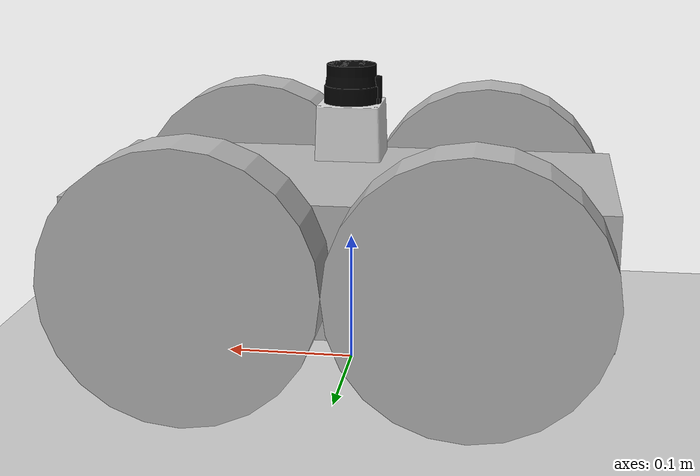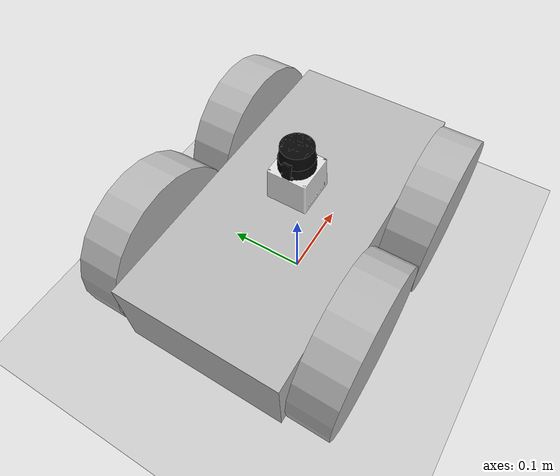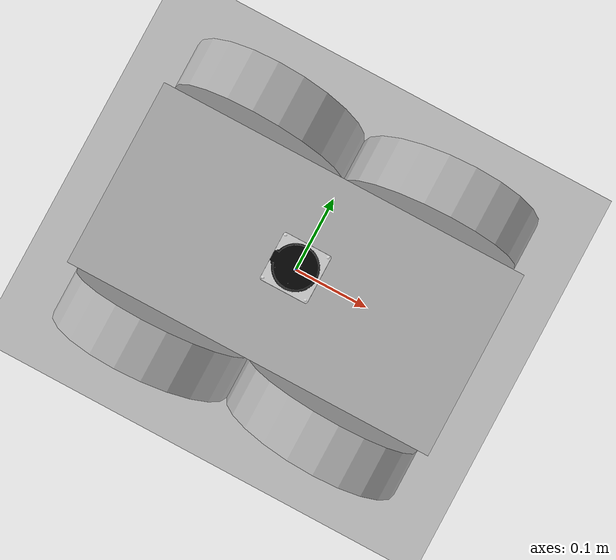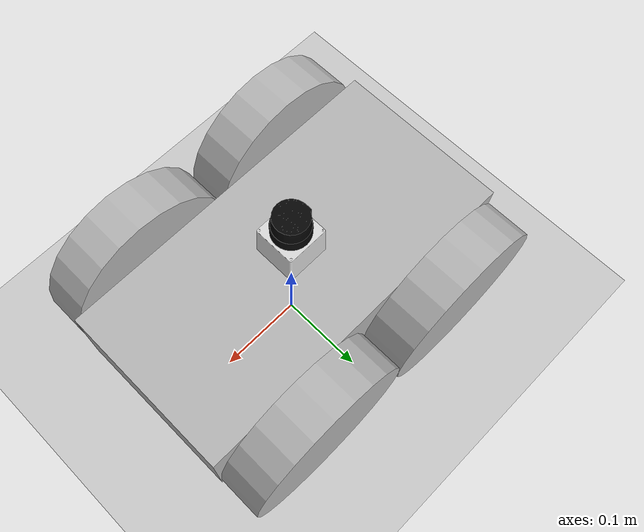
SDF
<sdf version="1.5">
 <world name="default">
  <light name="sun" type="directional">
   <pose>0 0 10 0 -0 0</pose>
   <diffuse>0.8 0.8 0.8 1</diffuse>
   <specular>0.2 0.2 0.2 1</specular>
   <attenuation>
    <range>1000</range>
    <constant>0.9</constant>
    <linear>0.01</linear>
    <quadratic>0.001</quadratic>
   </attenuation>
   <direction>-0.5 0.1 -0.9</direction>
  </light>
  <model name="ground_plane">
   <static>1</static>
   <link name="link">
    <collision name="collision">
     <geometry><plane><normal>0 0 1</normal><size>100 100</size></plane></geometry>
     <surface><friction><ode><mu>100</mu><mu2>50</mu2></ode></friction></surface>
    </collision>
    <visual name="visual">
     <cast_shadows>0</cast_shadows>
     <geometry><plane><normal>0 0 1</normal><size>100 100</size></plane></geometry>
     <material>
      <script><uri>file://media/materials/scripts/gazebo.material</uri><name>Gazebo/Grey</name></script>
     </material>
    </visual>
   </link>
  </model>
  <physics type="ode">
   <max_step_size>0.001</max_step_size>
   <real_time_factor>1</real_time_factor>
   <real_time_update_rate>1000</real_time_update_rate>
   <gravity>0 0 -9.8</gravity>
   <magnetic_field>5.5645e-06 2.28758e-05 -4.23884e-05</magnetic_field>
  </physics>
  <scene><ambient>0.4 0.4 0.4 1</ambient><background>0.7 0.7 0.7 1</background><shadows>1</shadows></scene>
  <spherical_coordinates>
   <surface_model>EARTH_WGS84</surface_model>
   <latitude_deg>0</latitude_deg>
   <longitude_deg>0</longitude_deg>
   <elevation>0</elevation>
   <heading_deg>0</heading_deg>
  </spherical_coordinates>
  <model name="jubot">
   <static>False</static>
   <link name="chassis">
    <pose>0 0 .1 0 0 0</pose>
    <collision name="collision"><geometry><box><size>.4 .2 .1</size></box></geometry></collision>
    <visual name="visual"><geometry><box><size>.4 .2 .1</size></box></geometry></visual>
   </link>
   <link name="left_front_wheel">
    <pose>0.1 0.13 0.1 0 1.5707 1.5707</pose>
    <collision name="collision">
     <geometry><cylinder><radius>.1</radius><length>.05</length></cylinder></geometry>
    </collision>
    <visual name="visual">
     <geometry><cylinder><radius>.1</radius><length>.05</length></cylinder></geometry>
    </visual>
   </link>
   <link name="right_front_wheel">
    <pose>0.1 -0.13 0.1 0 1.5707 1.5707</pose>
    <collision name="collision">
     <geometry><cylinder><radius>.1</radius><length>.05</length></cylinder></geometry>
    </collision>
    <visual name="visual">
     <geometry><cylinder><radius>.1</radius><length>.05</length></cylinder></geometry>
    </visual>
   </link>
   <link name="left_rear_wheel">
    <pose>-0.1 0.13 0.1 0 1.5707 1.5707</pose>
    <collision name="collision">
     <geometry><cylinder><radius>.1</radius><length>.05</length></cylinder></geometry>
    </collision>
    <visual name="visual">
     <geometry><cylinder><radius>.1</radius><length>.05</length></cylinder></geometry>
    </visual>
   </link>
   <link name="right_rear_wheel">
    <pose>-0.1 -0.13 0.1 0 1.5707 1.5707</pose>
    <collision name="collision">
     <geometry><cylinder><radius>.1</radius><length>.05</length></cylinder></geometry>
    </collision>
    <visual name="visual">
     <geometry><cylinder><radius>.1</radius><length>.05</length></cylinder></geometry>
    </visual>
   </link>
   <joint type="revolute" name="left_front">
    <pose>0 0 -0.03 0 0 0</pose>
    <child>left_front_wheel</child>
    <parent>chassis</parent>
    <axis><xyz>0 0 1</xyz></axis>
   </joint>
   <joint type="revolute" name="right_front">
    <pose>0 0 0.03 0 0 0</pose>
    <child>right_front_wheel</child>
    <parent>chassis</parent>
    <axis><xyz>0 0 1</xyz></axis>
   </joint>
   <joint type="revolute" name="left_rear">
    <pose>0 0 -0.03 0 0 0</pose>
    <child>left_rear_wheel</child>
    <parent>chassis</parent>
    <axis><xyz>0 0 1</xyz></axis>
   </joint>
   <joint type="revolute" name="right_rear">
    <pose>0 0 0.03 0 0 0</pose>
    <child>right_rear_wheel</child>
    <parent>chassis</parent>
    <axis><xyz>0 0 1</xyz></axis>
   </joint>
   <link name="hokuyo_link">
    <pose>0 0 0.2 0 0 0</pose>
    <inertial><mass>0.1</mass></inertial>
    <visual name="visual"><geometry><mesh><uri>model://hokuyo/meshes/hokuyo.dae</uri></mesh></geometry></visual>
    <collision name="collision-base">
     <pose>0 0 -0.0145 0 0 0</pose>
     <geometry><box><size>0.05 0.05 0.041</size></box></geometry>
    </collision>
    <collision name="collision-top">
     <pose>0 0 0.0205 0 0 0</pose>
     <geometry><cylinder><radius>0.021</radius><length>0.029</length></cylinder></geometry>
    </collision>
    <sensor name="laser" type="ray">
     <pose>0.01 0 0.0175 0 -0 0</pose>
     <ray>
      <scan>
       <horizontal>
        <samples>10</samples>
        <resolution>1</resolution>
        <min_angle>-1.26889</min_angle>
        <max_angle>1.268899</max_angle>
       </horizontal>
      </scan>
      <range><min>0.08</min><max>5</max><resolution>0.01</resolution></range>
     </ray>
     <plugin name="laser" filename="libRayPlugin.so"/>
     <always_on>1</always_on>
     <update_rate>30</update_rate>
     <visualize>true</visualize>
    </sensor>
   </link>
   <joint name="hokuyo_joint" type="revolute">
    <child>hokuyo_link</child>
    <parent>chassis</parent>
    <axis><xyz>0 0 1</xyz><limit><upper>0</upper><lower>0</lower></limit></axis>
   </joint>
   <plugin name="SkidSteerDrivePlugin" filename="libSkidSteerDrivePlugin.so"/>
  </model>
 </world>
</sdf>
